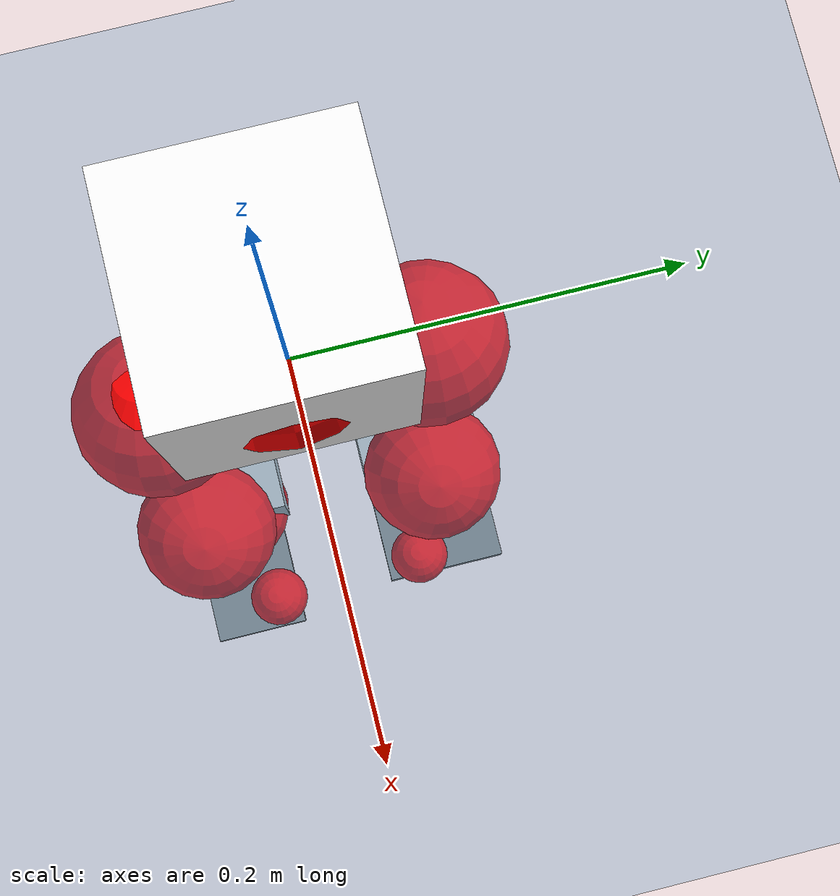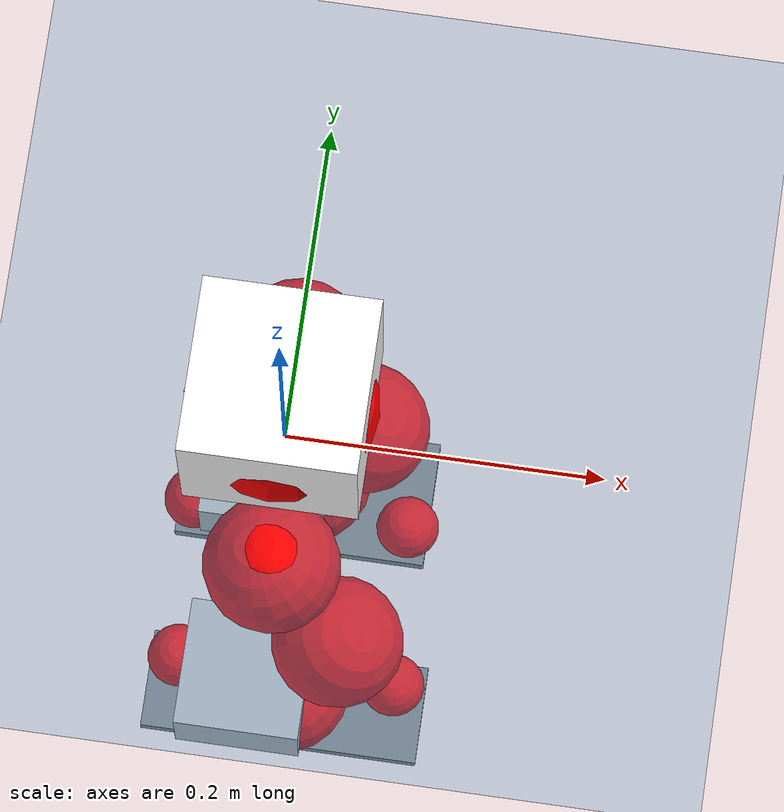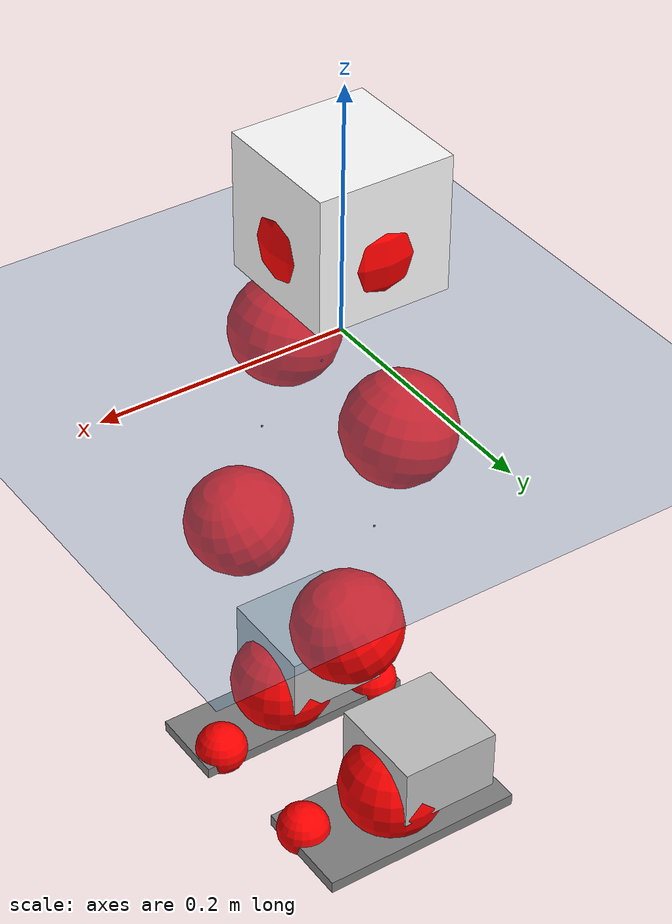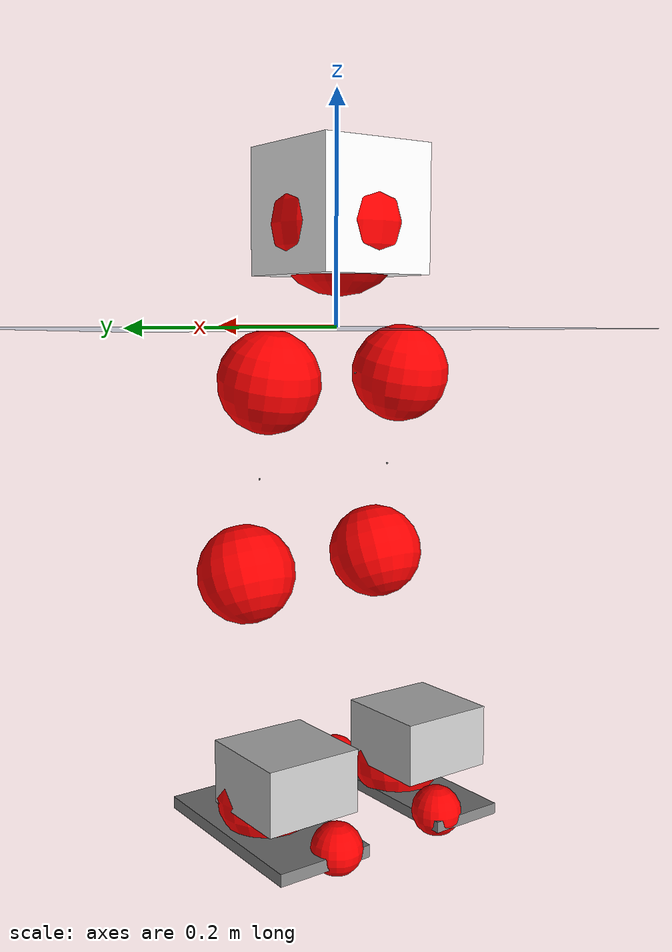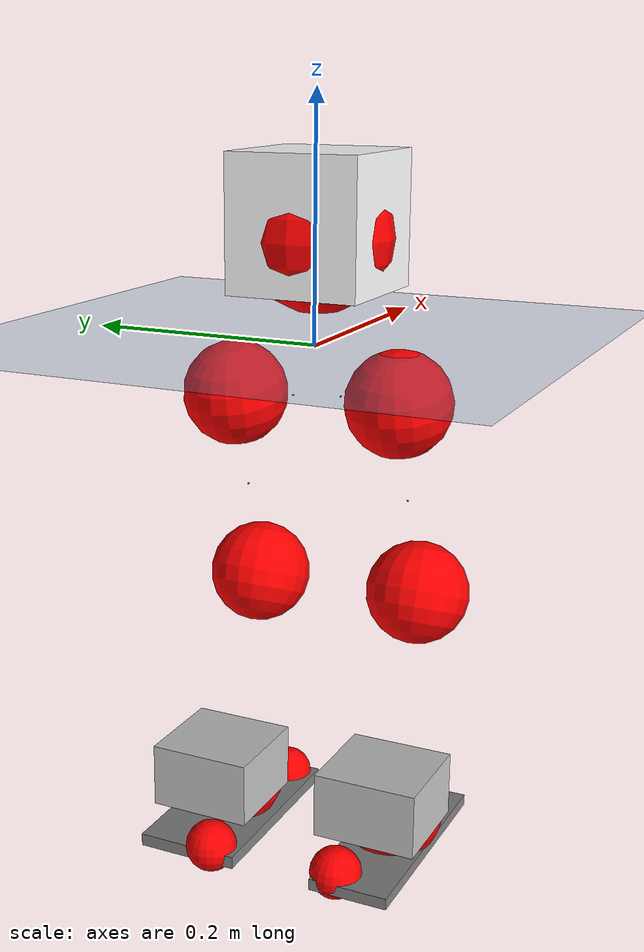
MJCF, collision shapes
<mujoco model="pi_12dof_release_v1">
  <compiler angle="radian" assetdir="assets" balanceinertia="true" inertiafromgeom="false"/>

  <option timestep="0.005" density="1.2" viscosity="2e-05"/>

  <size nkey="1"/>

  <visual>
    <quality shadowsize="8192"/>
    <map shadowclip="0.5"/>
  </visual>

  <default>
    <default class="/">
      <joint armature="0.01" damping="0.01" frictionloss="0.01"/>
      <geom contype="0" conaffinity="0" group="1" solref="-1000 -80"/>
      <site size="0.01 0.005 0.005" group="5"/>
      <general forcelimited="true" biastype="affine" gainprm="20" biasprm="0 -20 -0.5"/>
      <default class="foot">
        <geom size="0.0845 0.036 0.005" type="box" condim="6" group="4" priority="1" friction="0.9 0.2 0.2" solimp="0.015 1 0.005"/>
      </default>
      <default class="reward_collision_sphere">
        <geom group="5" rgba="1 0 0 1"/>
      </default>
    </default>
  </default>

  <asset>
    <texture type="skybox" colorspace="auto" name="//unnamed_texture_0" builtin="gradient" rgb1="0.95 0.95 0.95" rgb2="0.95 0.95 0.95" width="100" height="600"/>
    <texture type="2d" colorspace="auto" name="texplane" builtin="checker" rgb1="0.345 0.575 0.748" rgb2="0.345 0.575 0.748" markrgb="1 1 1" width="512" height="512"/>
    <material name="MatPlane" class="/" texture="texplane" texuniform="true" texrepeat="2 2" specular="0.9"/>
    <mesh name="baselink_1" class="/" file="baselink_1.STL"/>
    <mesh name="r_hip_pitch_link" class="/" file="r_hip_pitch_link.STL"/>
    <mesh name="r_hip_roll_link" class="/" file="r_hip_roll_link.STL"/>
    <mesh name="r_thigh_link" class="/" file="r_thigh_link.STL"/>
    <mesh name="r_calf_link" class="/" file="r_calf_link.STL"/>
    <mesh name="r_ankle_pitch_link" class="/" file="r_ankle_pitch_link.STL"/>
    <mesh name="r_ankle_roll_link" class="/" file="r_ankle_roll_link.STL"/>
    <mesh name="l_hip_pitch_link" class="/" file="l_hip_pitch_link.STL"/>
    <mesh name="l_hip_roll_link" class="/" file="l_hip_roll_link.STL"/>
    <mesh name="l_thigh_link" class="/" file="l_thigh_link.STL"/>
    <mesh name="l_calf_link" class="/" file="l_calf_link.STL"/>
    <mesh name="l_ankle_pitch_link" class="/" file="l_ankle_pitch_link.STL"/>
    <mesh name="l_ankle_roll_link" class="/" file="l_ankle_roll_link.STL"/>
  </asset>

  <worldbody>
    <geom name="floor" class="/" size="100 100 0.125" type="plane" group="0" material="MatPlane"/>
    <light name="toplight_shadow" class="/" pos="0 0 5" dir="0.0990148 0.0990148 -0.990148" type="directional" ambient="0.04 0.04 0.04" diffuse="0.55 0.55 0.55" specular="0.12 0.12 0.12"/>
    <light name="toplight_fill" class="/" pos="0 0 5" dir="0.0990148 0.0990148 -0.990148" type="directional" castshadow="false" ambient="0.04 0.04 0.04" diffuse="0.3 0.3 0.3" specular="0.08 0.08 0.08"/>
    <body name="trunk" pos="-0.000109917 -0.00282594 -0.000881736" quat="1 -8.85974e-06 3.3948e-05 -8.38185e-06">
      <inertial pos="0.00321996 -0.0030375 0.0500509" quat="0.694485 0.0120332 0.0162063 0.719224" mass="2.75015" diaginertia="0.0157079 0.0057351 0.0123059"/>
      <joint name="//unnamed_joint_0" type="free"/>
      <geom name="//unnamed_geom_1" class="/" type="mesh" density="0" rgba="1 1 1 1" mesh="baselink_1"/>
      <geom name="//unnamed_geom_2" class="/" size="0.0544602 0.0544602 0.0544602" pos="0 0 0.0994531" type="box" rgba="1 1 1 1"/>
      <geom name="//unnamed_geom_3" class="reward_collision_sphere" size="0.0599062" pos="0 0 0.0870214"/>
      <site name="imu" class="/" pos="0.0141496 0.0119046 -0.0141297" size="0.010892"/>
      <camera name="track" class="/" pos="0 -1.83637 0" quat="0.707107 0.707107 0 0" mode="trackcom"/>
      <camera name="ego_camera" class="/" pos="0.0829697 0 0.223769" quat="-0.5 -0.5 0.5 0.5"/>
      <body name="r_hip_pitch_link" pos="0.00237748 -0.0195258 -0.0389296" quat="0.992305 -0.000900202 -0.123811 -0.000491483">
        <inertial pos="0.00182391 -0.0516699 0.00240986" quat="-0.0194692 0.708797 -0.025273 0.704691" mass="0.459266" diaginertia="0.000179627 6.10486e-05 0.000245897"/>
        <joint name="r_hip_pitch_joint" class="/" pos="0 0 0" axis="0.000498474 -1 -2.94617e-05" range="-1.74771 1.20249" armature="0.0110914" damping="0.0148039" frictionloss="0.011031"/>
        <geom name="//unnamed_geom_4" class="/" type="mesh" density="0" rgba="0.75294 0.75294 0.75294 1" mesh="r_hip_pitch_link"/>
        <geom name="//unnamed_geom_5" class="/" size="0.000544602 0.000544602 0.000544602" type="box" rgba="0.75294 0.75294 0.75294 1"/>
        <body name="r_hip_roll_link" pos="-0.00102217 -0.050175 -0.000849138" quat="0.999999 0.00053745 0.00129607 -0.000301241">
          <inertial pos="0.00141036 0.00255229 -0.076542" quat="0.708038 -0.0660937 -0.0831633 0.698139" mass="0.501086" diaginertia="0.000545306 0.000180429 0.000378456"/>
          <joint name="r_hip_roll_joint" class="/" pos="0 0 0" axis="-0.999912 0.000602091 -0.0132315" range="-0.129581 0.552372" armature="0.00930977" damping="0.0182282" frictionloss="0.0111951"/>
          <geom name="//unnamed_geom_6" class="/" type="mesh" density="0" rgba="0.75294 0.75294 0.75294 1" mesh="r_hip_roll_link"/>
          <geom name="//unnamed_geom_7" class="/" size="0.000544602 0.000544602 0.000544602" type="box" rgba="0.75294 0.75294 0.75294 1"/>
          <geom name="//unnamed_geom_8" class="reward_collision_sphere" size="0.0435682"/>
          <body name="r_thigh_link" pos="-0.00140633 -0.00201248 -0.0868145" quat="0.999999 -0.00039977 0.000975354 0.000628325">
            <inertial pos="0.00318989 0.000984176 -0.0608677" quat="0.737224 0.675648 0.000191651 0.000174906" mass="0.14795" diaginertia="0.000200224 6.3617e-05 0.000167988"/>
            <joint name="r_thigh_joint" class="/" pos="0 0 0" axis="0.000484896 -0.000118131 -1" range="-0.357152 0.59007" armature="0.01008" damping="0.00254194" frictionloss="0.0111775"/>
            <geom name="//unnamed_geom_9" class="/" type="mesh" density="0" rgba="0.75294 0.75294 0.75294 1" mesh="r_thigh_link"/>
            <geom name="//unnamed_geom_10" class="/" size="0.000544602 0.000544602 0.000544602" type="box" rgba="0.75294 0.75294 0.75294 1"/>
            <body name="r_calf_link" pos="-0.000439203 -0.00314377 -0.0884538" quat="0.947654 -1.70922e-05 0.319298 2.31202e-05">
              <inertial pos="-0.00177876 -0.00120356 -0.0871481" quat="0.999973 -0.00508165 0.00105964 0.00519417" mass="1.00665" diaginertia="0.00574763 0.00221907 0.000530965"/>
              <joint name="r_calf_joint" class="/" pos="0 0 0" axis="0.011174 -0.999938 -0.000178972" range="-1.62067 0.691478" armature="0.010995" damping="0.00814952" frictionloss="0.0119892"/>
              <geom name="//unnamed_geom_11" class="/" type="mesh" density="0" rgba="0.75294 0.75294 0.75294 1" mesh="r_calf_link"/>
              <geom name="//unnamed_geom_12" class="/" size="0.000544602 0.000544602 0.000544602" type="box" rgba="0.75294 0.75294 0.75294 1"/>
              <geom name="//unnamed_geom_13" class="reward_collision_sphere" size="0.0435682"/>
              <body name="r_ankle_pitch_link" pos="0.00282891 0.00185537 -0.171253" quat="0.979958 -0.000269449 -0.199203 -0.000562237">
                <inertial pos="0.00319231 0.00158144 0.000629801" quat="0.0130987 0.703858 0.00237714 0.710216" mass="0.243384" diaginertia="0.000522231 0.00015002 0.000362672"/>
                <joint name="r_ankle_pitch_joint" class="/" pos="0 0 0" axis="0.00617275 -0.999935 0.0096258" range="-1.25826 0.546459" armature="0.0107383" damping="0.0222969" frictionloss="0.0103519"/>
                <geom name="//unnamed_geom_14" class="/" type="mesh" density="0" rgba="0.75294 0.75294 0.75294 1" mesh="r_ankle_pitch_link"/>
                <geom name="//unnamed_geom_15" class="/" size="0.042479 0.0435682 0.0272301" type="box" rgba="0.75294 0.75294 0.75294 1"/>
                <body name="r_ankle_roll_link" pos="0.0825762 0.00176524 -0.00216429" quat="0.999999 0.000324958 0.000902549 0.000922426">
                  <inertial pos="-0.024939 0.000710275 -0.0153086" quat="0.570483 0.426213 0.430131 0.554869" mass="0.662271" diaginertia="0.00186099 0.000669956 0.000845099"/>
                  <joint name="r_ankle_roll_joint" class="/" pos="0 0 0" axis="-1 9.27338e-05 8.72742e-05" stiffness="0.00115445" range="-0.189027 0.162067" armature="0.0108531" damping="0.00448539" frictionloss="0.00974427"/>
                  <geom name="//unnamed_geom_16" class="/" type="mesh" density="0" rgba="0.75294 0.75294 0.75294 1" mesh="r_ankle_roll_link"/>
                  <geom name="//unnamed_geom_17" class="/" type="mesh" rgba="0.75294 0.75294 0.75294 1" mesh="r_ankle_roll_link"/>
                  <geom name="right_foot" class="foot" size="0.0955796 0.033784 0.00480861" pos="-0.0564194 0 -0.0546992"/>
                  <geom name="//unnamed_geom_19" class="reward_collision_sphere" size="0.0435682" pos="-0.0553131 0 -0.0248633"/>
                  <geom name="//unnamed_geom_20" class="reward_collision_sphere" size="0.0217841" pos="0.0165939 0.0183637 -0.0497265"/>
                  <geom name="//unnamed_geom_21" class="reward_collision_sphere" size="0.0217841" pos="-0.132751 0.0183637 -0.0497265"/>
                  <site name="right_foot" class="foot" pos="-0.0564194 0 -0.0546992" size="0.010892"/>
                </body>
              </body>
            </body>
          </body>
        </body>
      </body>
      <body name="l_hip_pitch_link" pos="0.000317074 0.0216392 -0.0414732" quat="0.992195 -0.000353929 -0.124692 -5.92654e-05">
        <inertial pos="0.00171969 0.0469435 0.00177358" quat="-0.037753 0.705383 0.0300055 0.707184" mass="0.514146" diaginertia="0.000215838 6.97286e-05 0.000303273"/>
        <joint name="l_hip_pitch_joint" class="/" pos="0 0 0" axis="-0.000120764 1 0.000121886" stiffness="0.00998203" range="-1.25103 1.74446" armature="0.0109538" damping="0" frictionloss="0.0123819"/>
        <geom name="//unnamed_geom_22" class="/" type="mesh" density="0" rgba="0.75294 0.75294 0.75294 1" mesh="l_hip_pitch_link"/>
        <geom name="//unnamed_geom_23" class="/" size="0.000544602 0.000544602 0.000544602" type="box" rgba="0.75294 0.75294 0.75294 1"/>
        <body name="l_hip_roll_link" pos="-0.00256448 0.05155 -0.00170613" quat="1 8.71596e-05 5.63078e-05 -1.48842e-05">
          <inertial pos="-0.00327718 0.000880602 -0.0778386" quat="0.703969 -0.0825306 -0.0708609 0.701851" mass="0.518528" diaginertia="0.000559847 0.000186802 0.000390774"/>
          <joint name="l_hip_roll_joint" class="/" pos="0 0 0" axis="-0.999919 0.0125841 -0.00208799" stiffness="0.000948343" range="-0.545749 0.114288" armature="0.0123923" damping="0.00186353" frictionloss="0.0114579"/>
          <geom name="//unnamed_geom_24" class="/" type="mesh" density="0" rgba="0.75294 0.75294 0.75294 1" mesh="l_hip_roll_link"/>
          <geom name="//unnamed_geom_25" class="/" size="0.000544602 0.000544602 0.000544602" type="box" rgba="0.75294 0.75294 0.75294 1"/>
          <geom name="//unnamed_geom_26" class="reward_collision_sphere" size="0.0435682"/>
          <body name="l_thigh_link" pos="-0.00286358 -0.00188251 -0.0852504" quat="1 -0.00014138 -1.01427e-05 4.07367e-05">
            <inertial pos="0.00026437 -0.00138701 -0.0584931" quat="0.674285 0.738471 -0.000168652 -0.000614068" mass="0.155066" diaginertia="0.000220635 6.40129e-05 0.00017685"/>
            <joint name="l_thigh_joint" class="/" pos="0 0 0" axis="0.000167747 0.000433433 -1" range="-0.621063 0.293012" armature="0.00942299" damping="0.0121894" frictionloss="0.0110651"/>
            <geom name="//unnamed_geom_27" class="/" type="mesh" density="0" rgba="0.75294 0.75294 0.75294 1" mesh="l_thigh_link"/>
            <geom name="//unnamed_geom_28" class="/" size="0.000544602 0.000544602 0.000544602" type="box" rgba="0.75294 0.75294 0.75294 1"/>
            <body name="l_calf_link" pos="0.000471981 9.66887e-05 -0.0892797" quat="0.947526 0.00109883 0.319676 0.000593291">
              <inertial pos="0.0006285 0.00575685 -0.0898447" quat="0.999986 0.00324871 0.001048 0.00402635" mass="1.08108" diaginertia="0.00622191 0.00238304 0.000549561"/>
              <joint name="l_calf_joint" class="/" pos="0 0 0" axis="0.00970733 0.999875 -0.0125151" range="-0.659174 1.62851" armature="0.0110416" damping="0.00777962" frictionloss="0.0113346"/>
              <geom name="//unnamed_geom_29" class="/" type="mesh" density="0" rgba="0.75294 0.75294 0.75294 1" mesh="l_calf_link"/>
              <geom name="//unnamed_geom_30" class="/" size="0.000544602 0.000544602 0.000544602" type="box" rgba="0.75294 0.75294 0.75294 1"/>
              <geom name="//unnamed_geom_31" class="reward_collision_sphere" size="0.0435682"/>
              <body name="l_ankle_pitch_link" pos="0.00022509 0.00398307 -0.173519" quat="0.979923 0.000400748 -0.199376 -0.000913966">
                <inertial pos="0.0055324 -0.00342344 0.00234708" quat="-9.72088e-05 0.705949 0.00146863 0.708262" mass="0.21964" diaginertia="0.000488628 0.0001405 0.000345083"/>
                <joint name="l_ankle_pitch_joint" class="/" pos="0 0 0" axis="0.00187995 0.999993 0.00310287" range="-0.562299 1.35832" armature="0.010344" damping="0.00646557" frictionloss="0.0109586"/>
                <geom name="//unnamed_geom_32" class="/" type="mesh" density="0" rgba="0.75294 0.75294 0.75294 1" mesh="l_ankle_pitch_link"/>
                <geom name="//unnamed_geom_33" class="/" size="0.042479 0.0435682 0.0272301" type="box" rgba="0.75294 0.75294 0.75294 1"/>
                <body name="l_ankle_roll_link" pos="0.082073 0.00205007 0.00161331" quat="1 -0.000735736 -0.000500428 -0.000381197">
                  <inertial pos="-0.0248755 4.67698e-05 -0.018564" quat="0.556585 0.435176 0.433642 0.559276" mass="0.679355" diaginertia="0.00194487 0.000675557 0.000839551"/>
                  <joint name="l_ankle_roll_joint" class="/" pos="0 0 0" axis="-0.999961 0.00863426 0.00188437" range="-0.114728 0.0965981" armature="0.0120662" damping="0.0222346" frictionloss="0.00942725"/>
                  <geom name="//unnamed_geom_34" class="/" type="mesh" density="0" rgba="0.75294 0.75294 0.75294 1" mesh="l_ankle_roll_link"/>
                  <geom name="//unnamed_geom_35" class="/" type="mesh" rgba="0.75294 0.75294 0.75294 1" mesh="l_ankle_roll_link"/>
                  <geom name="left_foot" class="foot" size="0.0873135 0.0438494 0.00528058" pos="-0.0564194 0 -0.0546992"/>
                  <geom name="//unnamed_geom_37" class="reward_collision_sphere" size="0.0435682" pos="-0.0553131 0 -0.0248633"/>
                  <geom name="//unnamed_geom_38" class="reward_collision_sphere" size="0.0217841" pos="0.0165939 -0.0183637 -0.0497265"/>
                  <geom name="//unnamed_geom_39" class="reward_collision_sphere" size="0.0217841" pos="-0.132751 -0.0183637 -0.0497265"/>
                  <site name="left_foot" class="foot" pos="-0.0564194 0 -0.0546992" size="0.010892"/>
                </body>
              </body>
            </body>
          </body>
        </body>
      </body>
    </body>
  </worldbody>

  <contact>
    <pair class="/" geom1="floor" geom2="right_foot" name="//unnamed_contact_1"/>
    <pair class="/" geom1="floor" geom2="left_foot" name="//unnamed_contact_0"/>
  </contact>

  <actuator>
    <general name="r_hip_pitch_joint" class="/" joint="r_hip_pitch_joint" forcerange="-22.9821 22.9821" gainprm="20.4797" biasprm="0 -20.4797 -0.549471"/>
    <general name="r_hip_roll_joint" class="/" joint="r_hip_roll_joint" forcerange="-22.6509 22.6509" gainprm="20.4797" biasprm="0 -20.4797 -0.549471"/>
    <general name="r_thigh_joint" class="/" joint="r_thigh_joint" forcerange="-25.3029 25.3029" gainprm="20.4797" biasprm="0 -20.4797 -0.549471"/>
    <general name="r_calf_joint" class="/" joint="r_calf_joint" forcerange="-20.6352 20.6352" gainprm="20.4797" biasprm="0 -20.4797 -0.549471"/>
    <general name="r_ankle_pitch_joint" class="/" joint="r_ankle_pitch_joint" forcerange="-24.833 24.833" gainprm="20.4797" biasprm="0 -20.4797 -0.549471"/>
    <general name="r_ankle_roll_joint" class="/" joint="r_ankle_roll_joint" forcerange="-24.8237 24.8237" gainprm="20.4797" biasprm="0 -20.4797 -0.549471"/>
    <general name="l_hip_pitch_joint" class="/" joint="l_hip_pitch_joint" forcerange="-24.2013 24.2013" gainprm="20.4797" biasprm="0 -20.4797 -0.549471"/>
    <general name="l_hip_roll_joint" class="/" joint="l_hip_roll_joint" forcerange="-20.5506 20.5506" gainprm="20.4797" biasprm="0 -20.4797 -0.549471"/>
    <general name="l_thigh_joint" class="/" joint="l_thigh_joint" forcerange="-22.5288 22.5288" gainprm="20.4797" biasprm="0 -20.4797 -0.549471"/>
    <general name="l_calf_joint" class="/" joint="l_calf_joint" forcerange="-24.8023 24.8023" gainprm="20.4797" biasprm="0 -20.4797 -0.549471"/>
    <general name="l_ankle_pitch_joint" class="/" joint="l_ankle_pitch_joint" forcerange="-24.8017 24.8017" gainprm="20.4797" biasprm="0 -20.4797 -0.549471"/>
    <general name="l_ankle_roll_joint" class="/" joint="l_ankle_roll_joint" forcerange="-25.1843 25.1843" gainprm="20.4797" biasprm="0 -20.4797 -0.549471"/>
  </actuator>

  <sensor>
    <gyro site="imu" name="imu_angular_velocity"/>
    <velocimeter site="imu" name="imu_linear_velocity"/>
    <framelinvel objtype="site" objname="left_foot" name="left_foot_global_linear_velocity"/>
    <framelinvel objtype="site" objname="right_foot" name="right_foot_global_linear_velocity"/>
  </sensor>

  <keyframe>
    <key name="home" qpos="0 0 0.291 1 0 0 0 0.4 0 0 -0.8 0.4 0 -0.4 0 0 0.8 -0.4 0"/>
  </keyframe>
</mujoco>
